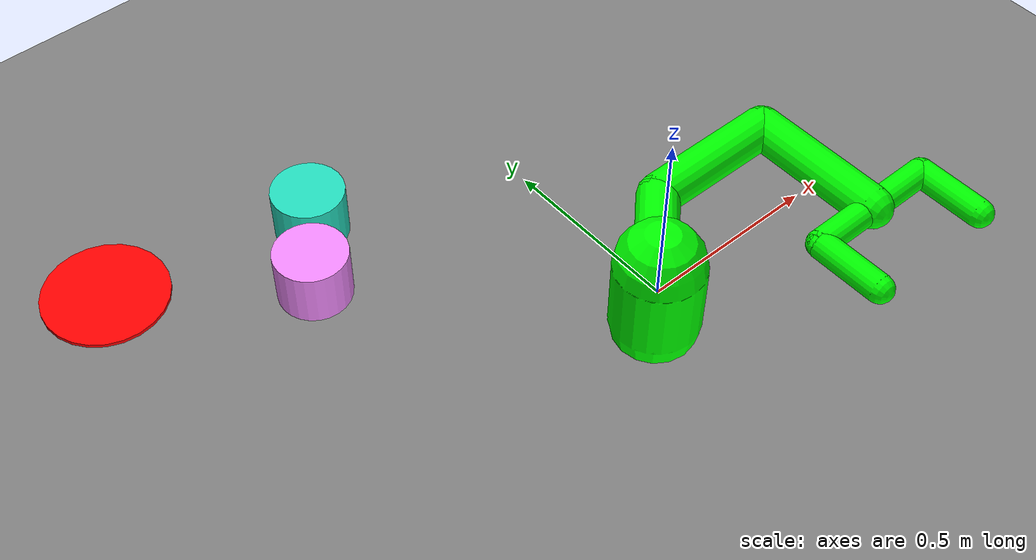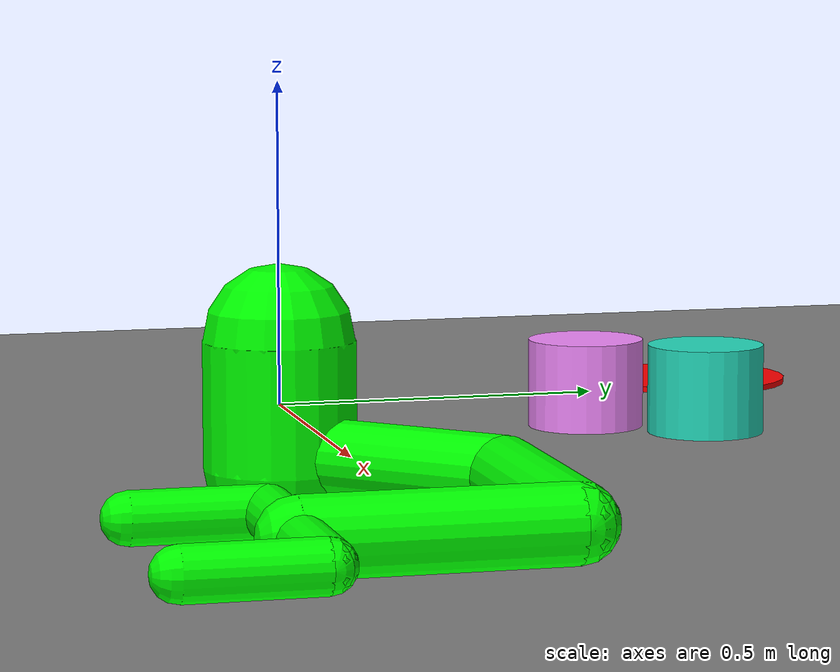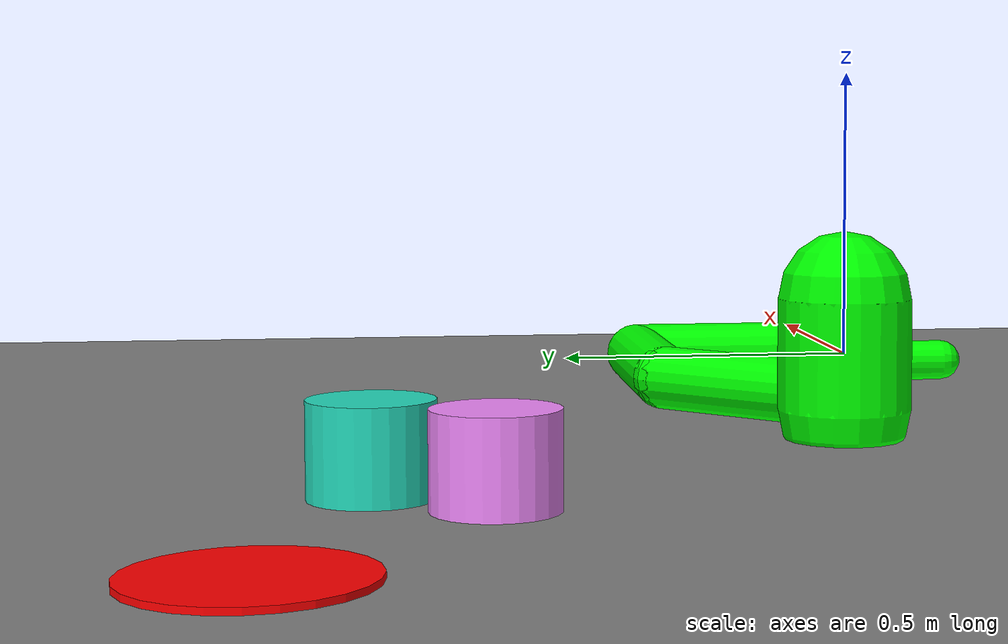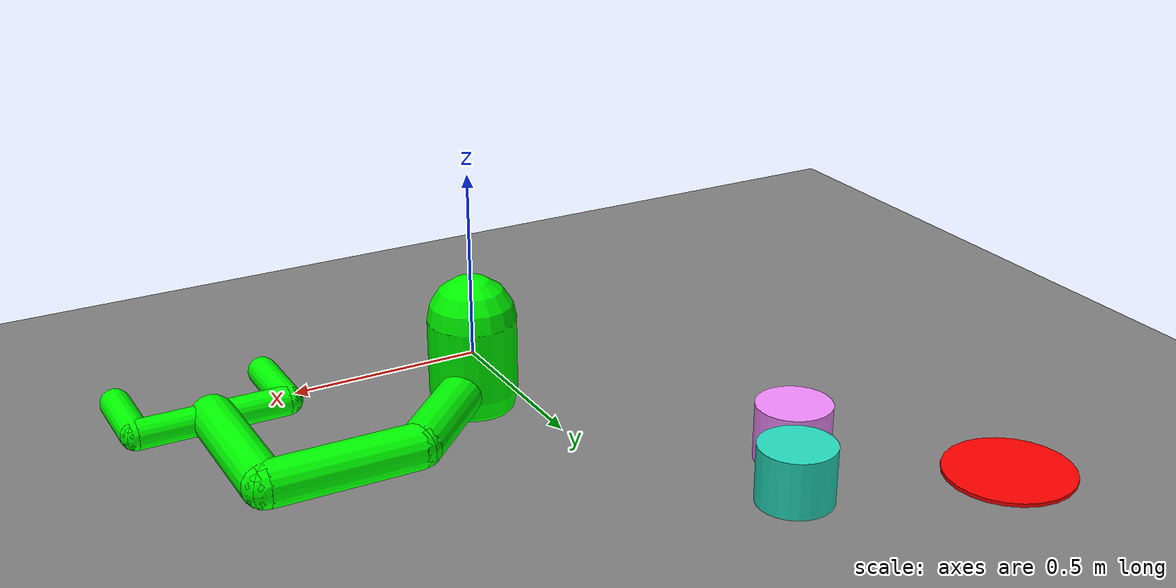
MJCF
<mujoco model="arm3d">
	<compiler inertiafromgeom="true" angle="radian" coordinate="local"/>
	<option timestep="0.01" integrator="Euler" gravity="0 0 0" iterations="20"/>
	<default >
		<joint limited="true" armature="0.04" damping="1"/>
		<geom density="300" friction="0.8 0.1 0.1" conaffinity="1" contype="1" condim="1" margin="0.002"/>
	</default>
	<worldbody >
		<light dir="0 0 -1" pos="0 0 3" diffuse=".5 .5 .5"/>
		<geom conaffinity="1" name="table" contype="1" type="plane" size="2 2 0.1" pos="0 0.5 -0.15"/>
		<body name="palm" pos="0 0 0">
			<geom type="capsule" rgba="0. 1. 0. 1" fromto="0 0 -0.1 0 0 0.1" size="0.12"/>
			<body name="proximal_1" axisangle="0 0 1 0.785" pos="0 0 -0.075">
				<joint range="-2.5 2.5" pos="0 0 0" name="proximal_j_1" type="hinge" axis="0 0 1" damping="1.0"/>
				<geom rgba="0. 1. 0. 1" conaffinity="1" contype="1" type="capsule" fromto="0 0 0 0.4 0 0" size="0.06"/>
				<body name="distal_1" axisangle="0 0 1 -0.785" pos="0.4 0 0">
					<joint range="-2.3213 2.3" pos="0 0 0" name="distal_j_1" type="hinge" axis="0 0 1" damping="1.0"/>
					<geom rgba="0. 1. 0. 1" conaffinity="1" contype="1" type="capsule" fromto="0 0 0 0.4 0 0" size="0.06"/>
					<body name="distal_2" axisangle="0 0 1 -1.57" pos="0.4 0 0">
						<joint range="-2.3213 2.3" pos="0 0 0" name="distal_j_2" type="hinge" axis="0 0 1" damping="1.0"/>
						<geom rgba="0. 1. 0. 1" conaffinity="1" contype="1" type="capsule" fromto="0 0 0 0.4 0 0" size="0.06"/>
						<body name="distal_4" pos="0.4 0 0">
							<site name="tip arml" size="0.01" pos="0.1 -0.2 0"/>
							<site name="tip armr" size="0.01" pos="0.1 0.2 0"/>
							<geom rgba="0. 1. 0. 1" conaffinity="1" contype="1" type="capsule" fromto="0 -0.2 0 0 0.2 0" size="0.04"/>
							<geom rgba="0. 1. 0. 1" conaffinity="1" contype="1" type="capsule" fromto="0 -0.2 0 0.2 -0.2 0" size="0.04"/>
							<geom rgba="0. 1. 0. 1" conaffinity="1" contype="1" type="capsule" fromto="0 0.2 0 0.2 0.2 0" size="0.04"/>
						</body>
					</body>
				</body>
			</body>
		</body>
		<body name="distractor" pos="-0.45619902157124415 0.8440572618306976 -0.1">
			<geom density="0.00001" rgba="0.14140907968724248 0.8634940764547087 0.742688387149475 1.0" conaffinity="1" contype="1" type="cylinder" size="0.1 0.1 0.1"/>
			<joint range="-10.3213 10.3" pos="0.025 0.025 0.025" name="distractor_slidey" type="slide" axis="0 1 0" damping="0.5"/>
			<joint range="-10.3213 10.3" pos="0.025 0.025 0.025" name="distractor_slidex" type="slide" axis="1 0 0" damping="0.5"/>
		</body>
		<body name="object" pos="-0.5762183301734054 0.6631875221879808 -0.1">
			<geom density="0.00001" rgba="0.9467678484902902 0.5392283563207871 0.9890823405443367 1.0" conaffinity="1" contype="1" type="cylinder" size="0.1 0.1 0.1"/>
			<joint range="-10.3213 10.3" pos="0.025 0.025 0.025" name="obj_slidey" type="slide" axis="0 1 0" damping="0.5"/>
			<joint range="-10.3213 10.3" pos="0.025 0.025 0.025" name="obj_slidex" type="slide" axis="1 0 0" damping="0.5"/>
		</body>
		<body name="goal" pos="-1.0 1.0 -0.145">
			<geom density="0.00001" rgba="1 0 0 1" conaffinity="0" contype="0" type="cylinder" size="0.17 0.005 0.2"/>
			<joint range="-10.3213 10.3" pos="0 0 0" name="goal_slidey" type="slide" axis="0 1 0" damping="0.5"/>
			<joint range="-10.3213 10.3" pos="0 0 0" name="goal_slidex" type="slide" axis="1 0 0" damping="0.5"/>
		</body>
	</worldbody>
	<actuator >
		<motor ctrllimited="true" joint="proximal_j_1" ctrlrange="-3.0 3.0"/>
		<motor ctrllimited="true" joint="distal_j_1" ctrlrange="-3.0 3.0"/>
		<motor ctrllimited="true" joint="distal_j_2" ctrlrange="-3.0 3.0"/>
	</actuator>
</mujoco>
